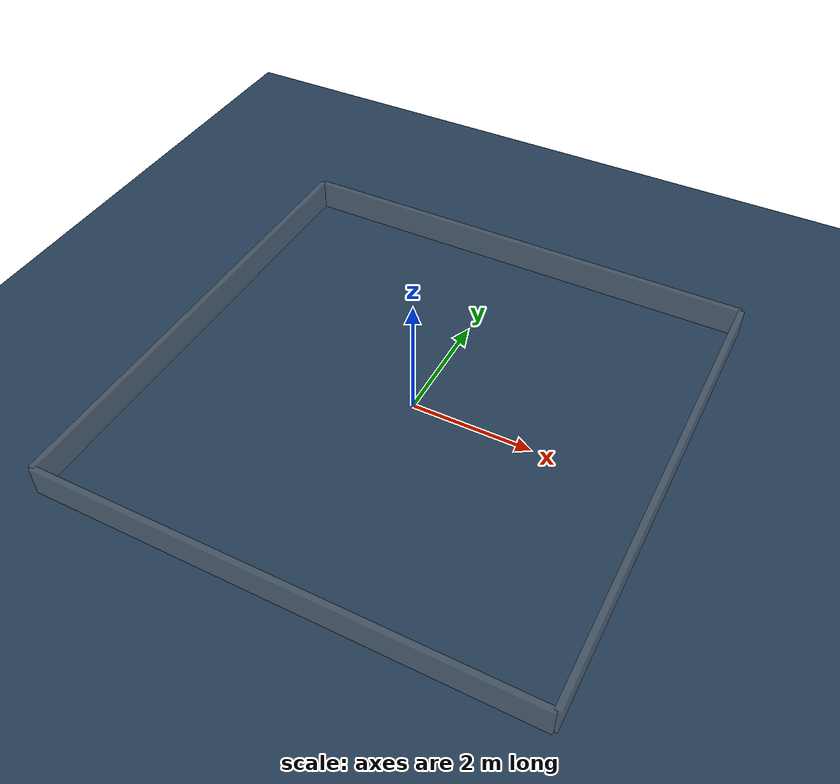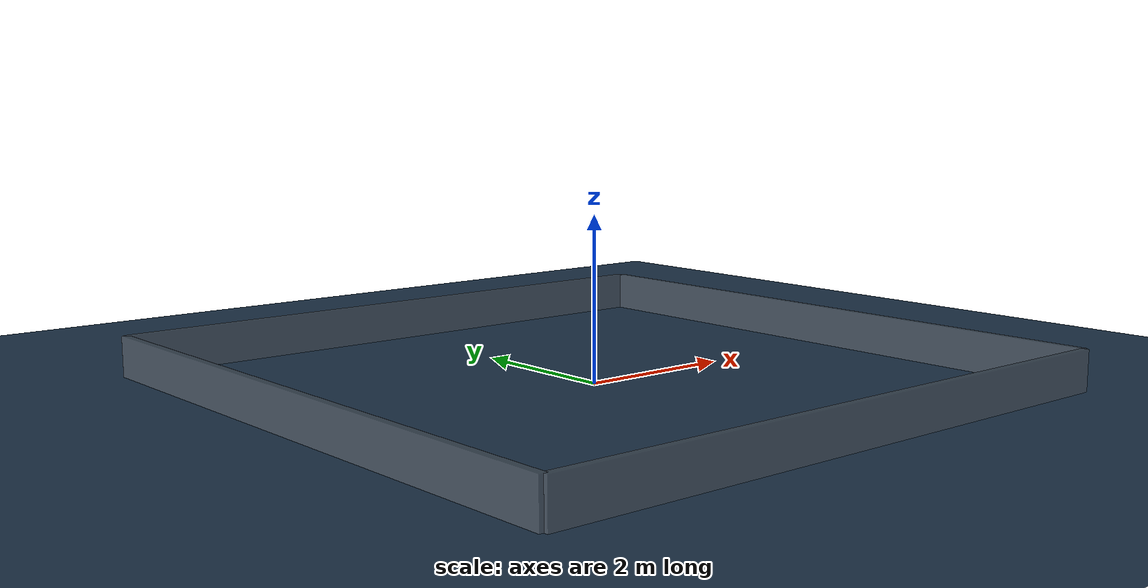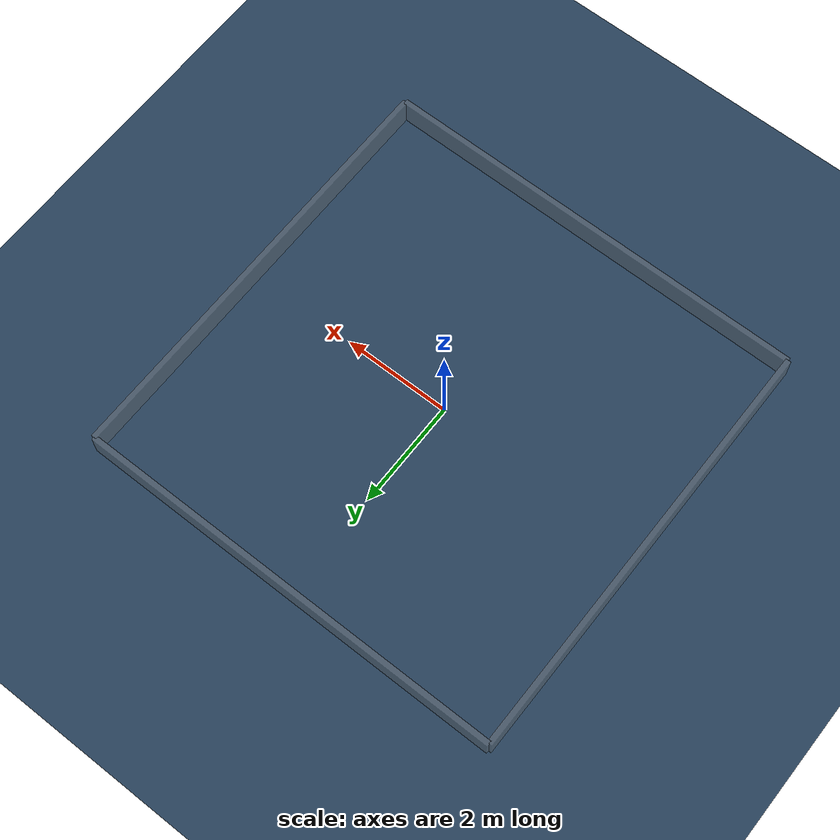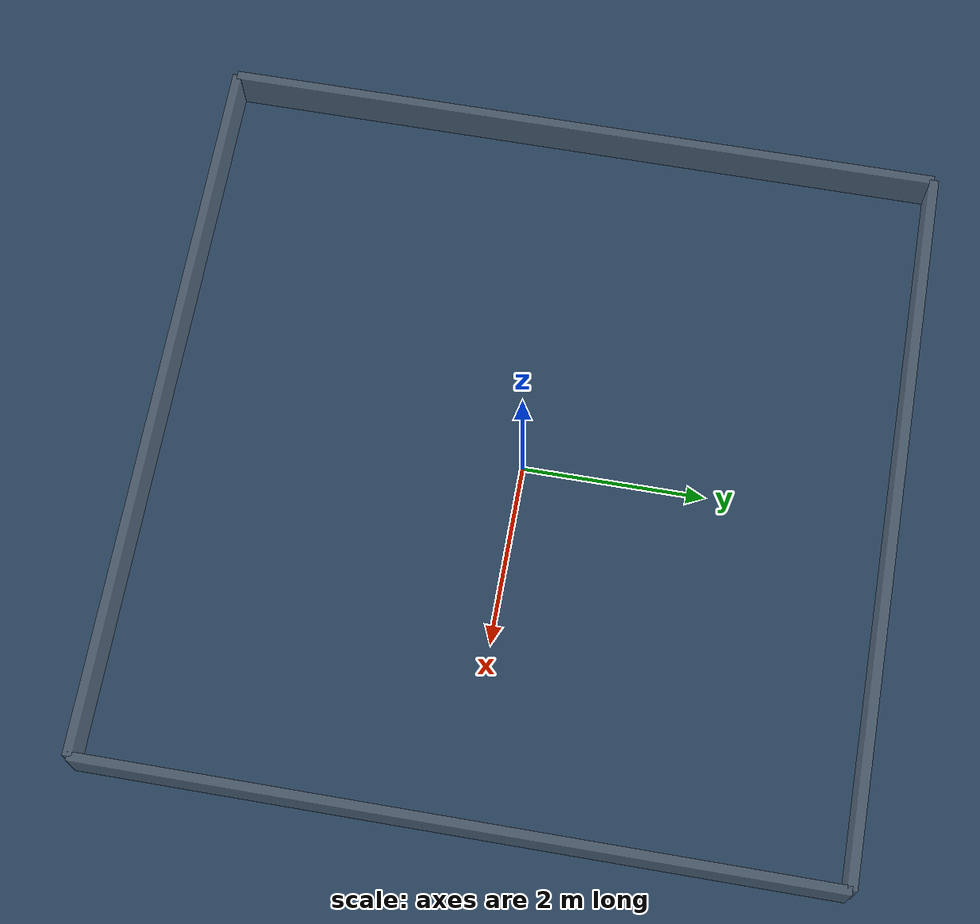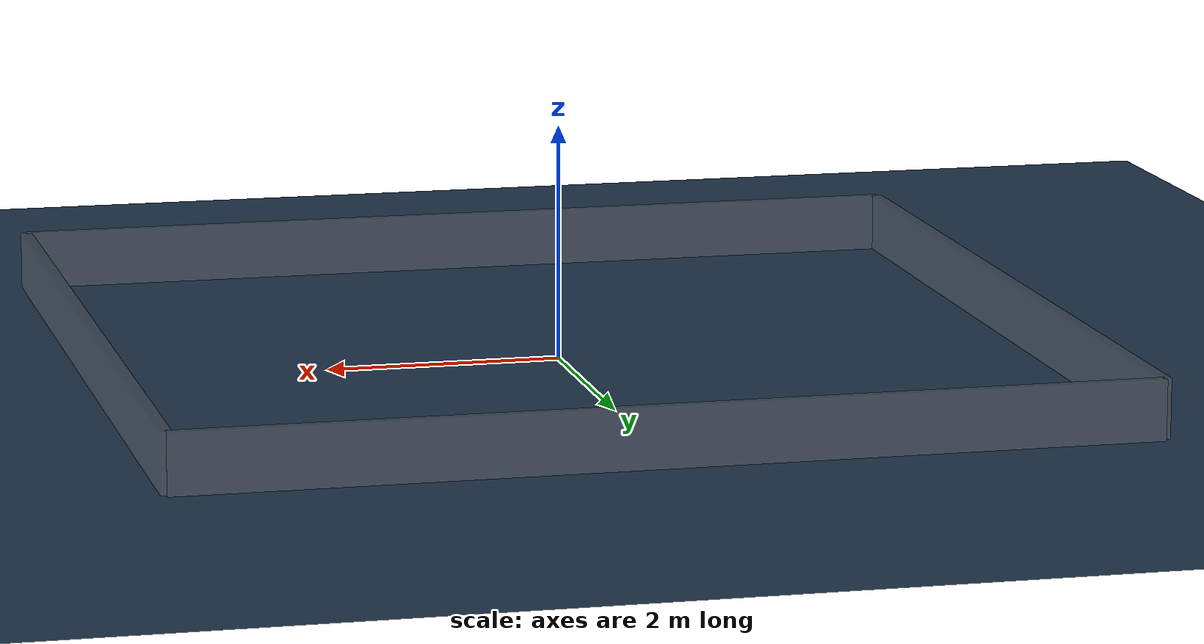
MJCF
<mujoco model="scene">

  <statistic center="0 0 0.3" extent="1"/>

  <visual>
    <headlight diffuse="0.6 0.6 0.6"  ambient="0.3 0.3 0.3" specular="0 0 0"/>
    <rgba haze="0.15 0.25 0.35 1"/>
    <global fovy="100" azimuth="90" elevation="-25" ipd="21"/>
  </visual>

  <default>
    <default class="wall">
      <geom rgba=".5 .5 .5 .4"/>
    </default>
  </default>

  <asset>
    <texture type="skybox" builtin="gradient" rgb1="0.3 0.5 0.7" rgb2="0 0 0" width="512"
        height="3072"/>
    <texture type="2d" name="groundplane" builtin="checker" mark="edge" rgb1="0.2 0.3 0.4"
        rgb2="0.1 0.2 0.3" markrgb="0.8 0.8 0.8" width="300" height="300"/>
    <material name="groundplane" texture="groundplane" texuniform="true" texrepeat="5 5"
        reflectance="0.2"/>
  </asset>

  <worldbody>
    <light name="top" pos="0 0 2" mode="trackcom"/>
    <light pos="0 0 1.5" dir="0 0 -1" directional="true"/>
    <geom name="floor" size="0 0 0.05" type="plane" material="groundplane"/>

    <body name="stage">
      <geom type="box" size=".05 4 .25" pos="4 0 .25" class="wall"/>
      <geom type="box" size="4 .05 .25" pos="0  4 .25" class="wall"/>
      <geom type="box" size=".05 4 .25" pos="-4 0 .25" class="wall"/>
      <geom type="box" size="4 .05 .25" pos="0 -4 .25" class="wall"/>
    </body>
  </worldbody>

</mujoco>
